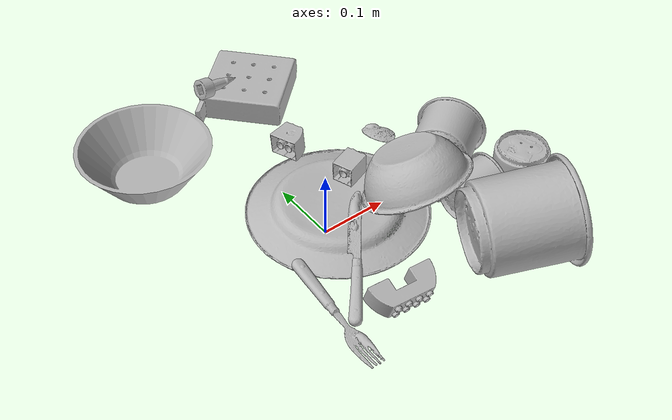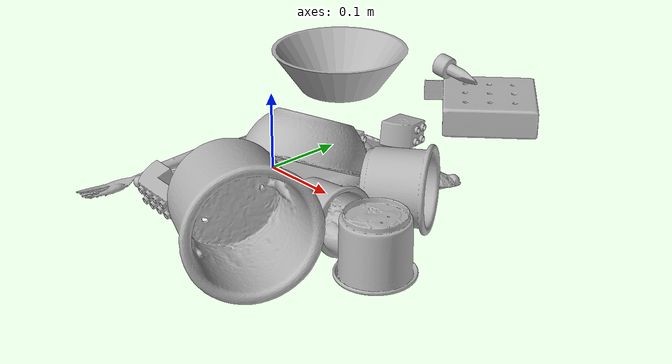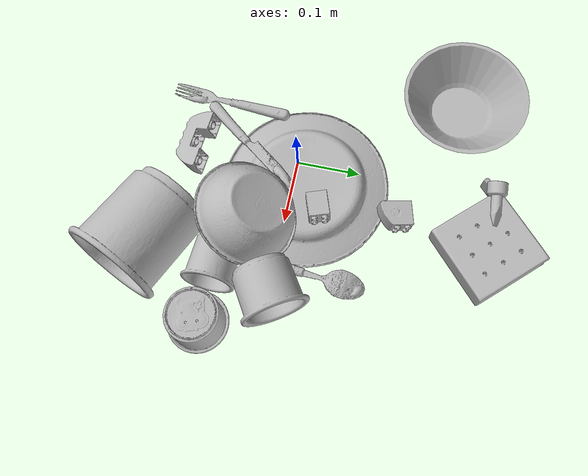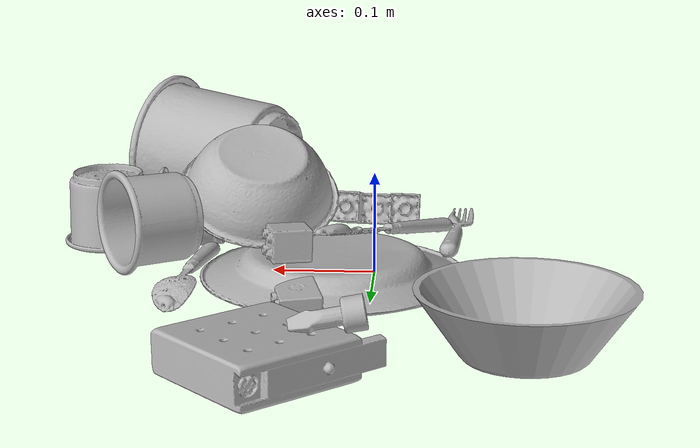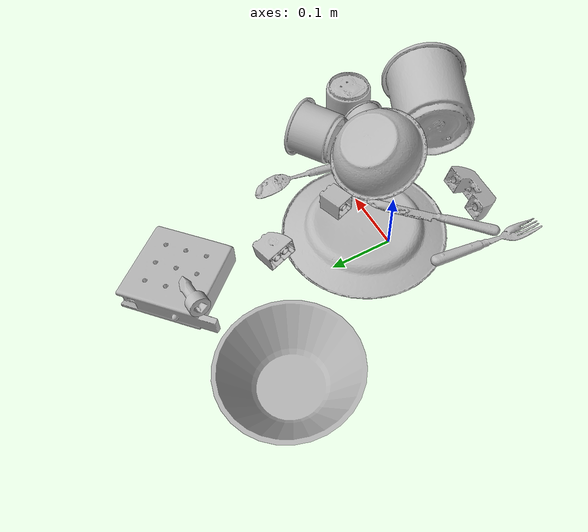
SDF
<sdf version="1.4">
  <world name="default">
    <light name="light1" type="point">
      <pose>0 0 1 0 0 0</pose>
      <diffuse>3 3 3 1</diffuse>
      <specular>3 3 3 1</specular>
    </light>
    <light name="light2" type="point">
      <pose>0 0.5 2 0 0 0</pose>
      <diffuse>1 1 1 1</diffuse>
      <specular>1 1 1 1</specular>
    </light>
    <light name="light3" type="point">
      <pose>0 0.5 2 0 0 0</pose>
      <diffuse>3 3 3 1</diffuse>
      <specular>3 3 3 1</specular>
    </light>
    <scene>
      <ambient>0.7 0.7 0.7</ambient>
    </scene>
    <model name="plate1">
      <link name="link_plate1">
        <collision name="default">
          <geometry>
            <mesh>
              <uri>model://plate/collision_meshes/collision.obj</uri>
              <scale>1.0 1.0 1.0</scale>
            </mesh>
          </geometry>
          <surface>
            <friction>
              <ode>
                <mu>0.5</mu>
                <mu2>0.5</mu2>
              </ode>
            </friction>
          <contact>
        <ode>
            <max_vel>0</max_vel>
            <min_depth>0.0001</min_depth>
            <kp>1e8</kp>
        </ode>
    </contact></surface>
        </collision>
        <visual name="default">
          <geometry>
            <mesh>
              <uri>model://plate/visual_meshes/visual.dae</uri>
              <scale>1.0 1.0 1.0</scale>
            </mesh>
          </geometry>
        </visual>
        <inertial>
          <mass>0.17760059237480164</mass>
          <pose>-0.0006044625188224018 0.0002782586379908025 -0.0010561981471255422 0.0022187804018266454 -0.0032254852757079067 0.45261158451631034</pose>
          <inertia>
            <ixx>0.0008308187</ixx>
            <iyy>0.0008228725</iyy>
            <izz>0.0016249575</izz>
            <ixy>0</ixy>
            <ixz>0</ixz>
            <iyz>0</iyz>
          </inertia>
        </inertial>
      </link>
      <pose>0.038574252277612686 0.021177291870117188 0.013448327779769897 3.141427879178155 -0.003165721393710325 0.8278462447294862</pose>
    </model>
    <model name="cup1">
      <link name="link_cup1">
        <collision name="default">
          <geometry>
            <mesh>
              <uri>model://e_cups/collision_meshes/collision.obj</uri>
              <scale>2.0 2.0 2.0</scale>
            </mesh>
          </geometry>
          <surface>
            <friction>
              <ode>
                <mu>0.5</mu>
                <mu2>0.5</mu2>
              </ode>
            </friction>
          <contact>
        <ode>
            <max_vel>0</max_vel>
            <min_depth>0.0001</min_depth>
            <kp>1e8</kp>
        </ode>
    </contact></surface>
        </collision>
        <visual name="default">
          <geometry>
            <mesh>
              <uri>model://e_cups/visual_meshes/visual.dae</uri>
              <scale>2.0 2.0 2.0</scale>
            </mesh>
          </geometry>
        </visual>
        <inertial>
          <mass>0.744063675403595</mass>
          <pose>0.002271148143336177 0.005759569350630045 -0.007765938527882099 0.6952380949131286 0.08767384491187986 -0.5235246841726229</pose>
          <inertia>
            <ixx>0.0026243117</ixx>
            <iyy>0.0027427815</iyy>
            <izz>0.0025091455</izz>
            <ixy>0</ixy>
            <ixz>0</ixz>
            <iyz>0</iyz>
          </inertia>
        </inertial>
      </link>
      <pose>0.17317020893096924 -0.19016218185424805 0.07023888826370239 1.4516865503481156 -0.773890388200903 1.2239813162449964</pose>
    </model>
    <model name="silverware1">
      <link name="link_silverware1">
        <collision name="default">
          <geometry>
            <mesh>
              <uri>model://knife/collision_meshes/collision.obj</uri>
              <scale>1.0 1.0 1.0</scale>
            </mesh>
          </geometry>
          <surface>
            <friction>
              <ode>
                <mu>0.5</mu>
                <mu2>0.5</mu2>
              </ode>
            </friction>
          <contact>
        <ode>
            <max_vel>0</max_vel>
            <min_depth>0.0001</min_depth>
            <kp>1e8</kp>
        </ode>
    </contact></surface>
        </collision>
        <visual name="default">
          <geometry>
            <mesh>
              <uri>model://knife/visual_meshes/visual.dae</uri>
              <scale>1.0 1.0 1.0</scale>
            </mesh>
          </geometry>
        </visual>
        <inertial>
          <mass>0.01882243901491165</mass>
          <pose>-0.02378525212407112 0.001527512213215232 5.062019408796914e-05 0.07305335090357784 0.017248422780830937 -0.007409828138098005</pose>
          <inertia>
            <ixx>5.342572e-07</ixx>
            <iyy>7.231275e-05</iyy>
            <izz>7.248483e-05</izz>
            <ixy>0</ixy>
            <ixz>0</ixz>
            <iyz>0</iyz>
          </inertia>
        </inertial>
      </link>
      <pose>-0.00799400545656681 -0.07595457136631012 0.023069273680448532 -3.091209662367177 -0.15434917963325345 0.9027865806145691</pose>
    </model>
    <model name="silverware2">
      <link name="link_silverware2">
        <collision name="default">
          <geometry>
            <mesh>
              <uri>model://fork/collision_meshes/collision.obj</uri>
              <scale>1.0 1.0 1.0</scale>
            </mesh>
          </geometry>
          <surface>
            <friction>
              <ode>
                <mu>0.5</mu>
                <mu2>0.5</mu2>
              </ode>
            </friction>
          <contact>
        <ode>
            <max_vel>0</max_vel>
            <min_depth>0.0001</min_depth>
            <kp>1e8</kp>
        </ode>
    </contact></surface>
        </collision>
        <visual name="default">
          <geometry>
            <mesh>
              <uri>model://fork/visual_meshes/visual.dae</uri>
              <scale>1.0 1.0 1.0</scale>
            </mesh>
          </geometry>
        </visual>
        <inertial>
          <mass>0.02216319739818573</mass>
          <pose>-0.029570037499070168 0.0004658822435885668 0.0003218860365450382 -0.01355085274048469 -0.010977831838055618 0.014453900749429992</pose>
          <inertia>
            <ixx>7.769453e-07</ixx>
            <iyy>5.7861733e-05</iyy>
            <izz>5.8209254e-05</izz>
            <ixy>0</ixy>
            <ixz>0</ixz>
            <iyz>0</iyz>
          </inertia>
        </inertial>
      </link>
      <pose>-0.08067139238119125 -0.12707427144050598 0.006793384440243244 0.030934326400586923 0.07561288865549533 -1.656241347956334</pose>
    </model>
    <model name="silverware3">
      <link name="link_silverware3">
        <collision name="default">
          <geometry>
            <mesh>
              <uri>model://spoon/collision_meshes/collision.obj</uri>
              <scale>1.0 1.0 1.0</scale>
            </mesh>
          </geometry>
          <surface>
            <friction>
              <ode>
                <mu>0.5</mu>
                <mu2>0.5</mu2>
              </ode>
            </friction>
          <contact>
        <ode>
            <max_vel>0</max_vel>
            <min_depth>0.0001</min_depth>
            <kp>1e8</kp>
        </ode>
    </contact></surface>
        </collision>
        <visual name="default">
          <geometry>
            <mesh>
              <uri>model://spoon/visual_meshes/visual.dae</uri>
              <scale>1.0 1.0 1.0</scale>
            </mesh>
          </geometry>
        </visual>
        <inertial>
          <mass>0.0369713120162487</mass>
          <pose>-0.005526314955204725 -0.001603417214937508 -0.0007271651993505657 0.03521850370393077 -0.03906584809093457 0.006150612862082015</pose>
          <inertia>
            <ixx>2.0564048e-06</ixx>
            <iyy>0.00014067463</iyy>
            <izz>0.00014168874</izz>
            <ixy>0</ixy>
            <ixz>0</ixz>
            <iyz>0</iyz>
          </inertia>
        </inertial>
      </link>
      <pose>0.17851413786411285 0.044807642698287964 0.010378989391028881 -3.0115362742311196 -0.06307673416728156 1.4670706352133132</pose>
    </model>
    <model name="cup3">
      <link name="link_cup3">
        <collision name="default">
          <geometry>
            <mesh>
              <uri>model://h_cups/collision_meshes/collision.obj</uri>
              <scale>1.0 1.0 1.0</scale>
            </mesh>
          </geometry>
          <surface>
            <friction>
              <ode>
                <mu>0.5</mu>
                <mu2>0.5</mu2>
              </ode>
            </friction>
          <contact>
        <ode>
            <max_vel>0</max_vel>
            <min_depth>0.0001</min_depth>
            <kp>1e8</kp>
        </ode>
    </contact></surface>
        </collision>
        <visual name="default">
          <geometry>
            <mesh>
              <uri>model://h_cups/visual_meshes/visual.dae</uri>
              <scale>1.0 1.0 1.0</scale>
            </mesh>
          </geometry>
        </visual>
        <inertial>
          <mass>0.07650958746671677</mass>
          <pose>-2.7029362172470428e-05 0.0002301867789356038 -0.0018405390437692404 -0.02436239906192228 0.06545228304852578 0.1288505673262376</pose>
          <inertia>
            <ixx>9.880857e-05</ixx>
            <iyy>9.7629454e-05</iyy>
            <izz>0.0001036231</izz>
            <ixy>0</ixy>
            <ixz>0</ixz>
            <iyz>0</iyz>
          </inertia>
        </inertial>
      </link>
      <pose>0.27850937843322754 -0.09019538760185242 0.03752993047237396 -3.1415908209505226 2.655111441223227e-07 -2.729996628657992</pose>
    </model>
    <model name="cup4">
      <link name="link_cup4">
        <collision name="default">
          <geometry>
            <mesh>
              <uri>model://f_cups/collision_meshes/collision.obj</uri>
              <scale>1.0 1.0 1.0</scale>
            </mesh>
          </geometry>
          <surface>
            <friction>
              <ode>
                <mu>0.5</mu>
                <mu2>0.5</mu2>
              </ode>
            </friction>
          <contact>
        <ode>
            <max_vel>0</max_vel>
            <min_depth>0.0001</min_depth>
            <kp>1e8</kp>
        </ode>
    </contact></surface>
        </collision>
        <visual name="default">
          <geometry>
            <mesh>
              <uri>model://f_cups/visual_meshes/visual.dae</uri>
              <scale>1.0 1.0 1.0</scale>
            </mesh>
          </geometry>
        </visual>
        <inertial>
          <mass>0.06643713265657425</mass>
          <pose>-0.003171468386426568 -0.0006240070797502995 -0.003655537962913513 0.7862285241405351 -0.26079358215919657 -0.18237309734404591</pose>
          <inertia>
            <ixx>6.2452695e-05</ixx>
            <iyy>6.551358e-05</iyy>
            <izz>6.820148e-05</izz>
            <ixy>0</ixy>
            <ixz>0</ixz>
            <iyz>0</iyz>
          </inertia>
        </inertial>
      </link>
      <pose>0.19076216220855713 -0.08386334776878357 0.0371660478413105 1.4766393527925297 0.28694904776125724 1.5058916659068582</pose>
    </model>
    <model name="cup5">
      <link name="link_cup5">
        <collision name="default">
          <geometry>
            <mesh>
              <uri>model://j_cups/collision_meshes/collision.obj</uri>
              <scale>1.0 1.0 1.0</scale>
            </mesh>
          </geometry>
          <surface>
            <friction>
              <ode>
                <mu>0.5</mu>
                <mu2>0.5</mu2>
              </ode>
            </friction>
          <contact>
        <ode>
            <max_vel>0</max_vel>
            <min_depth>0.0001</min_depth>
            <kp>1e8</kp>
        </ode>
    </contact></surface>
        </collision>
        <visual name="default">
          <geometry>
            <mesh>
              <uri>model://j_cups/visual_meshes/visual.dae</uri>
              <scale>1.0 1.0 1.0</scale>
            </mesh>
          </geometry>
        </visual>
        <inertial>
          <mass>0.12178023159503937</mass>
          <pose>0.0006164865335449576 0.000539897009730339 -0.001347901183180511 0.03030406613159603 0.03757978252187804 0.4386981755119238</pose>
          <inertia>
            <ixx>0.0001788119</ixx>
            <iyy>0.00018067128</iyy>
            <izz>0.00020613305</izz>
            <ixy>0</ixy>
            <ixz>0</ixz>
            <iyz>0</iyz>
          </inertia>
        </inertial>
      </link>
      <pose>0.21902234852313995 0.0039759911596775055 0.0512629933655262 1.552726137758072 0.5337590447118783 2.129990793379122</pose>
    </model>
    <model name="bowl1">
      <link name="link_bowl1">
        <collision name="default">
          <geometry>
            <mesh>
              <uri>model://bowl/collision_meshes/collision.obj</uri>
              <scale>1.0 1.0 1.0</scale>
            </mesh>
          </geometry>
          <surface>
            <friction>
              <ode>
                <mu>0.5</mu>
                <mu2>0.5</mu2>
              </ode>
            </friction>
          <contact>
        <ode>
            <max_vel>0</max_vel>
            <min_depth>0.0001</min_depth>
            <kp>1e8</kp>
        </ode>
    </contact></surface>
        </collision>
        <visual name="default">
          <geometry>
            <mesh>
              <uri>model://bowl/visual_meshes/visual.dae</uri>
              <scale>1.0 1.0 1.0</scale>
            </mesh>
          </geometry>
        </visual>
        <inertial>
          <mass>0.07745425403118134</mass>
          <pose>0.0002044533030129969 -0.001030205748975277 -0.0008042643312364817 -0.015764104528614948 0.014546761750555465 0.7140386532433999</pose>
          <inertia>
            <ixx>0.00017791858</ixx>
            <iyy>0.0001739432</iyy>
            <izz>0.00029932024</izz>
            <ixy>0</ixy>
            <ixz>0</ixz>
            <iyz>0</iyz>
          </inertia>
        </inertial>
      </link>
      <pose>0.11529207229614258 -0.038484811782836914 0.08794794976711273 2.9207487663285074 0.43291599110292417 1.3464336657807905</pose>
    </model>
    <model name="bowl2">
      <link name="link_bowl2">
        <collision name="default">
          <geometry>
            <mesh>
              <uri>model://bowl_a/collision_meshes/collision.obj</uri>
              <scale>1.0 1.0 1.0</scale>
            </mesh>
          </geometry>
          <surface>
            <friction>
              <ode>
                <mu>0.5</mu>
                <mu2>0.5</mu2>
              </ode>
            </friction>
          <contact>
        <ode>
            <max_vel>0</max_vel>
            <min_depth>0.0001</min_depth>
            <kp>1e8</kp>
        </ode>
    </contact></surface>
        </collision>
        <visual name="default">
          <geometry>
            <mesh>
              <uri>model://bowl_a/visual_meshes/visual.dae</uri>
              <scale>1.0 1.0 1.0</scale>
            </mesh>
          </geometry>
        </visual>
        <inertial>
          <mass>0.3088552951812744</mass>
          <pose>0.00027867488097399473 4.730938235297799e-05 -0.0013765291078016162 -0.0009805400563029818 -0.0010938222386440513 -0.19123616665791646</pose>
          <inertia>
            <ixx>0.0008793254</ixx>
            <iyy>0.00088472397</iyy>
            <izz>0.0015639137</izz>
            <ixy>0</ixy>
            <ixz>0</ixz>
            <iyz>0</iyz>
          </inertia>
        </inertial>
      </link>
      <pose>-0.13968344032764435 0.24258236587047577 0.030383003875613213 -9.735029898488535e-09 3.659794141616945e-08 0.8337239999483554</pose>
    </model>
    <model name="toy1">
      <link name="link_toy1">
        <collision name="default">
          <geometry>
            <mesh>
              <uri>model://nine_hole_peg_test/collision_meshes/collision.obj</uri>
              <scale>1.0 1.0 1.0</scale>
            </mesh>
          </geometry>
          <surface>
            <friction>
              <ode>
                <mu>0.5</mu>
                <mu2>0.5</mu2>
              </ode>
            </friction>
          <contact>
        <ode>
            <max_vel>0</max_vel>
            <min_depth>0.0001</min_depth>
            <kp>1e8</kp>
        </ode>
    </contact></surface>
        </collision>
        <visual name="default">
          <geometry>
            <mesh>
              <uri>model://nine_hole_peg_test/visual_meshes/visual.dae</uri>
              <scale>1.0 1.0 1.0</scale>
            </mesh>
          </geometry>
        </visual>
        <inertial>
          <mass>0.6997236609458923</mass>
          <pose>-0.004617386497557163 -0.009647613391280174 2.6460686058271676e-05 -0.0014666798725883532 0.0007194177661592421 -0.634241755630697</pose>
          <inertia>
            <ixx>0.001094133</ixx>
            <iyy>0.0010215805</iyy>
            <izz>0.0019172435</izz>
            <ixy>0</ixy>
            <ixz>0</ixz>
            <iyz>0</iyz>
          </inertia>
        </inertial>
      </link>
      <pose>0.07424630224704742 0.30779173970222473 0.020771002396941185 -3.39363809687982e-09 -3.1715911222538285e-08 2.318075940400446</pose>
    </model>
    <model name="toy2">
      <link name="link_toy2">
        <collision name="default">
          <geometry>
            <mesh>
              <uri>model://b_lego_duplo/collision_meshes/collision.obj</uri>
              <scale>1.0 1.0 1.0</scale>
            </mesh>
          </geometry>
          <surface>
            <friction>
              <ode>
                <mu>0.5</mu>
                <mu2>0.5</mu2>
              </ode>
            </friction>
          <contact>
        <ode>
            <max_vel>0</max_vel>
            <min_depth>0.0001</min_depth>
            <kp>1e8</kp>
        </ode>
    </contact></surface>
        </collision>
        <visual name="default">
          <geometry>
            <mesh>
              <uri>model://b_lego_duplo/visual_meshes/visual.dae</uri>
              <scale>1.0 1.0 1.0</scale>
            </mesh>
          </geometry>
        </visual>
        <inertial>
          <mass>0.036269694566726685</mass>
          <pose>-0.00011053054186049849 -9.152130587608553e-06 0.0019294297089800239 -0.03749458994465856 -0.026354447033388347 0.4518895757464325</pose>
          <inertia>
            <ixx>7.4228647e-06</ixx>
            <iyy>7.4727645e-06</iyy>
            <izz>6.6135317e-06</izz>
            <ixy>0</ixy>
            <ixz>0</ixz>
            <iyz>0</iyz>
          </inertia>
        </inertial>
      </link>
      <pose>0.08215434104204178 0.049838852137327194 0.0424724705517292 1.541121530554046 -0.0012226753941221799 1.9129386269388653</pose>
    </model>
    <model name="toy3">
      <link name="link_toy3">
        <collision name="default">
          <geometry>
            <mesh>
              <uri>model://e_lego_duplo/collision_meshes/collision.obj</uri>
              <scale>1.0 1.0 1.0</scale>
            </mesh>
          </geometry>
          <surface>
            <friction>
              <ode>
                <mu>0.5</mu>
                <mu2>0.5</mu2>
              </ode>
            </friction>
          <contact>
        <ode>
            <max_vel>0</max_vel>
            <min_depth>0.0001</min_depth>
            <kp>1e8</kp>
        </ode>
    </contact></surface>
        </collision>
        <visual name="default">
          <geometry>
            <mesh>
              <uri>model://e_lego_duplo/visual_meshes/visual.dae</uri>
              <scale>1.0 1.0 1.0</scale>
            </mesh>
          </geometry>
        </visual>
        <inertial>
          <mass>0.09994293004274368</mass>
          <pose>0.0003256055060774088 0.00023485402925871313 0.0019521453650668263 -0.0225675226805428 -6.825163911406593e-05 -0.00762515763197677</pose>
          <inertia>
            <ixx>2.08414e-05</ixx>
            <iyy>8.553845e-05</iyy>
            <izz>8.329725e-05</izz>
            <ixy>0</ixy>
            <ixz>0</ixz>
            <iyz>0</iyz>
          </inertia>
        </inertial>
      </link>
      <pose>0.00452164513990283 -0.16343241930007935 0.020625006407499313 1.8996845161397695 -0.009115876561448561 -0.08299282543126352</pose>
    </model>
    <model name="toy4">
      <link name="link_toy4">
        <collision name="default">
          <geometry>
            <mesh>
              <uri>model://d_lego_duplo/collision_meshes/collision.obj</uri>
              <scale>1.0 1.0 1.0</scale>
            </mesh>
          </geometry>
          <surface>
            <friction>
              <ode>
                <mu>0.5</mu>
                <mu2>0.5</mu2>
              </ode>
            </friction>
          <contact>
        <ode>
            <max_vel>0</max_vel>
            <min_depth>0.0001</min_depth>
            <kp>1e8</kp>
        </ode>
    </contact></surface>
        </collision>
        <visual name="default">
          <geometry>
            <mesh>
              <uri>model://d_lego_duplo/visual_meshes/visual.dae</uri>
              <scale>1.0 1.0 1.0</scale>
            </mesh>
          </geometry>
        </visual>
        <inertial>
          <mass>0.04219998046755791</mass>
          <pose>0.0028305635787546635 0.00016366135969292372 0.0008589813369326293 0.08010947906167593 -0.38355230128712514 0.001029700717632254</pose>
          <inertia>
            <ixx>8.169298e-06</ixx>
            <iyy>1.1594444e-05</iyy>
            <izz>1.1181217e-05</izz>
            <ixy>0</ixy>
            <ixz>0</ixz>
            <iyz>0</iyz>
          </inertia>
        </inertial>
      </link>
      <pose>0.0650964304804802 0.16707941889762878 0.01891392283141613 1.595869714238699 0.12386643961925368 1.8343112554432788</pose>
    </model>
    <model name="toy5">
      <link name="link_toy5">
        <collision name="default">
          <geometry>
            <mesh>
              <uri>model://e_toy_airplane/collision_meshes/collision.obj</uri>
              <scale>1.0 1.0 1.0</scale>
            </mesh>
          </geometry>
          <surface>
            <friction>
              <ode>
                <mu>0.5</mu>
                <mu2>0.5</mu2>
              </ode>
            </friction>
          <contact>
        <ode>
            <max_vel>0</max_vel>
            <min_depth>0.0001</min_depth>
            <kp>1e8</kp>
        </ode>
    </contact></surface>
        </collision>
        <visual name="default">
          <geometry>
            <mesh>
              <uri>model://e_toy_airplane/visual_meshes/visual.dae</uri>
              <scale>1.0 1.0 1.0</scale>
            </mesh>
          </geometry>
        </visual>
        <inertial>
          <mass>0.01083444245159626</mass>
          <pose>0.00011740464105969295 -2.2482989152194932e-05 -0.011187201365828514 0.005518500665833105 0.009228299677984822 0.1504140594290799</pose>
          <inertia>
            <ixx>3.3067965e-06</ixx>
            <iyy>3.2729695e-06</iyy>
            <izz>9.938221e-07</izz>
            <ixy>0</ixy>
            <ixz>0</ixz>
            <iyz>0</iyz>
          </inertia>
        </inertial>
      </link>
      <pose>0.02723698504269123 0.3094033896923065 0.05356404185295105 1.7819959008321786 -0.5840111110871844 1.52927322368489</pose>
    </model>
  <physics type="ode">
      <max_contacts>50</max_contacts>
      <ode>
        <solver>
          <type>quick</type>
          <iters>75</iters>
        </solver>
        <constraints>
          <contact_max_correcting_vel>0</contact_max_correcting_vel>
          <contact_surface_layer>0</contact_surface_layer>
        </constraints>
      </ode>
    </physics></world>
</sdf>
